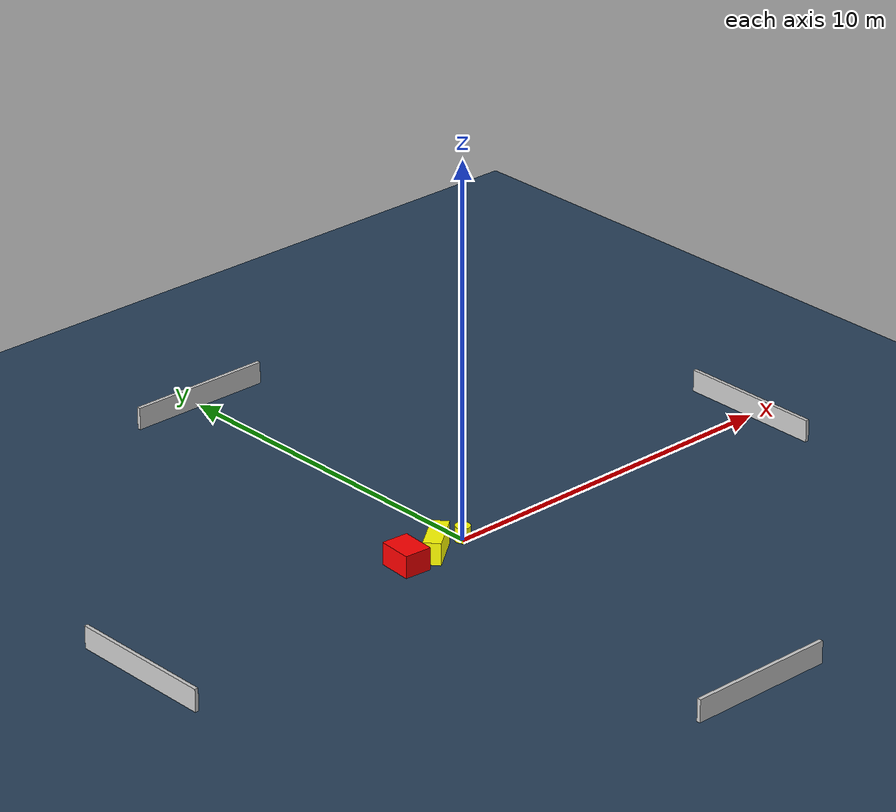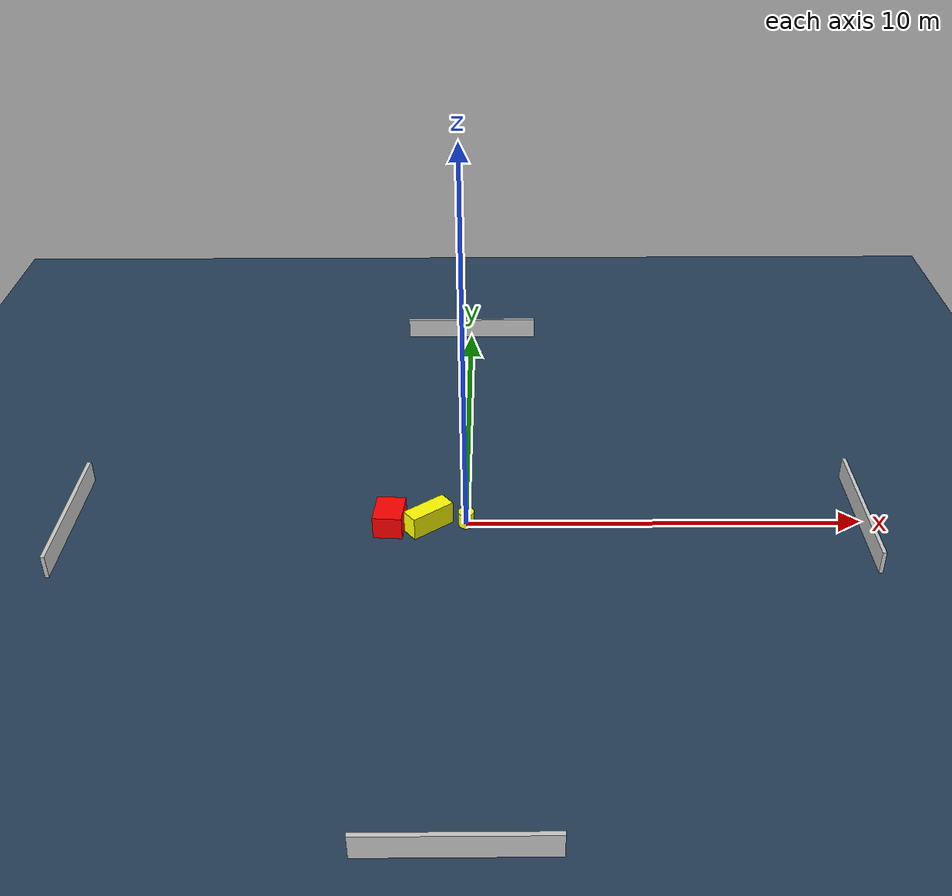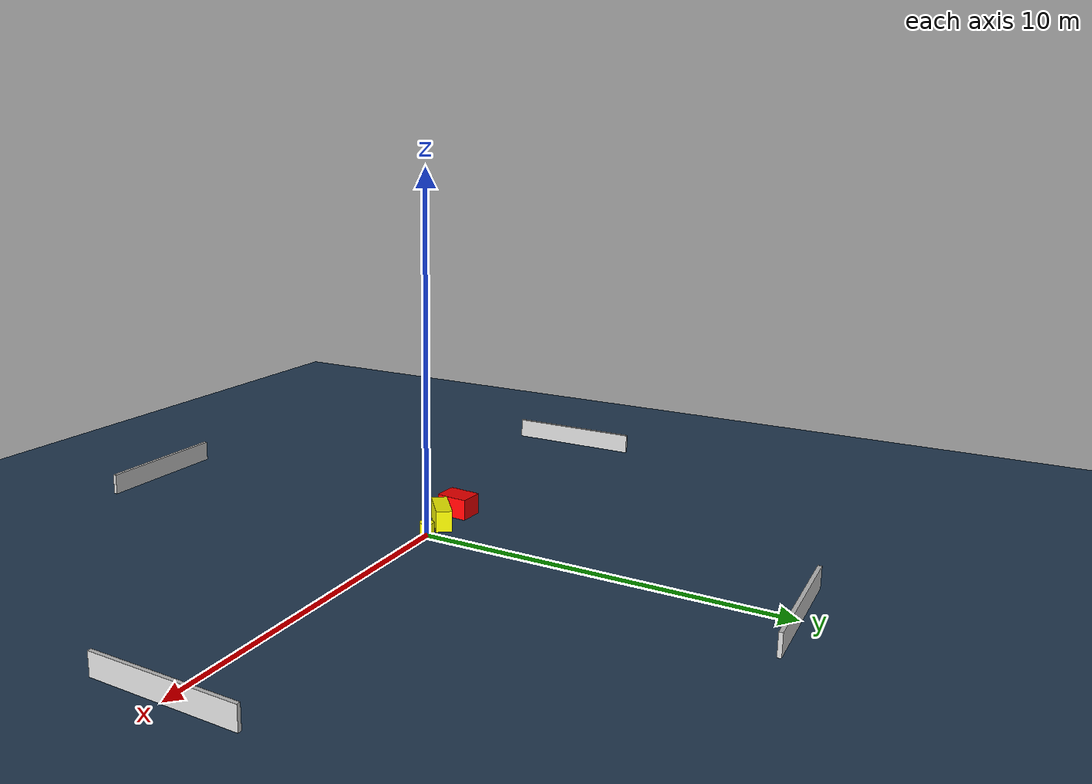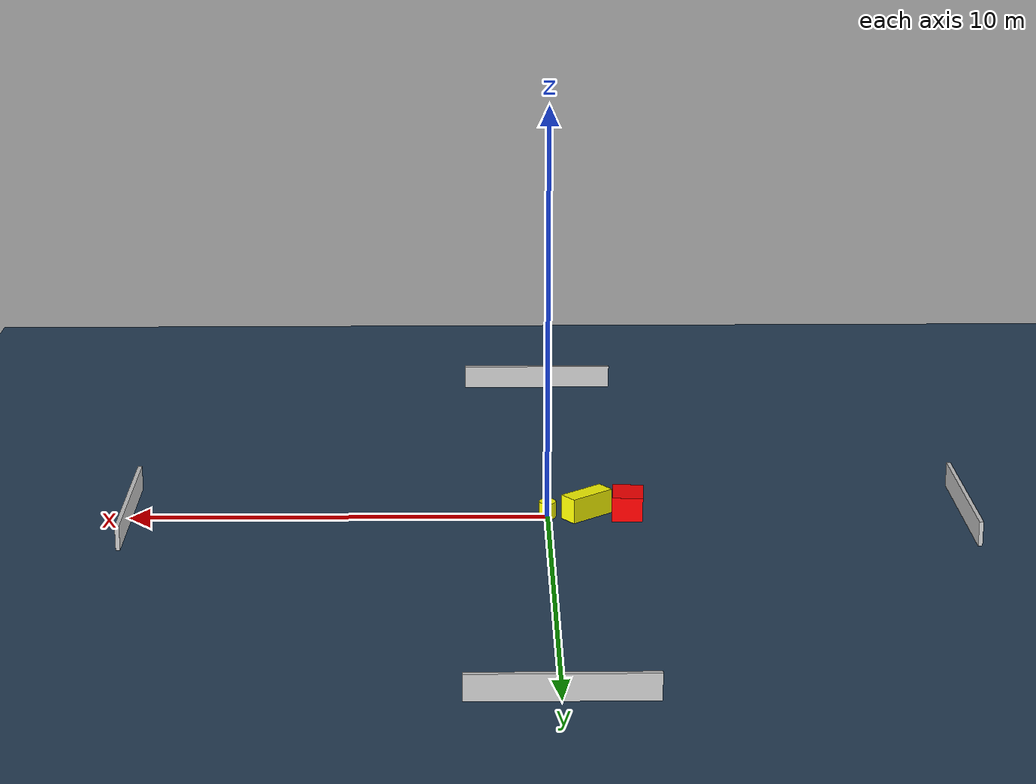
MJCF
<?xml version="1.0" ?>
<mujoco model="generated_environment">
  <option timestep="0.01" integrator="RK4" cone="elliptic"/>
  <default>
    <geom density="1"/>
  </default>
  <asset>
    <texture builtin="gradient" height="3072" name="skybox" rgb1="0.3 0.5 0.7" rgb2="0 0 0" type="skybox" width="512"/>
    <texture builtin="checker" height="300" name="groundplane" rgb1="0.2 0.3 0.4" rgb2="0.1 0.2 0.3" type="2d" width="300"/>
    <material name="groundplane" reflectance="0.2" texrepeat="5 5" texture="groundplane"/>
  </asset>
  <worldbody>
    <light dir="0 0 -1" directional="true" pos="0 0 1.5"/>
    <geom condim="3" friction="0.5 0.005 0.001" material="groundplane" name="floor" pos="0 0 0" size="0 0 0.05" type="plane"/>
    <body name="walls">
      <geom name="wall_1" condim="4" pos="-10.0 0.0 0.3" rgba="0.800000011920929 0.800000011920929 0.800000011920929 1.0" size="0.05 2.0 0.3" type="box"/>
      <geom name="wall_2" condim="4" pos="10.0 0.0 0.3" rgba="0.800000011920929 0.800000011920929 0.800000011920929 1.0" size="0.05 2.0 0.3" type="box"/>
      <geom name="wall_3" condim="4" pos="0.0 -10.0 0.3" rgba="0.800000011920929 0.800000011920929 0.800000011920929 1.0" size="2.0 0.05 0.3" type="box"/>
      <geom name="wall_4" condim="4" pos="0.0 10.0 0.3" rgba="0.800000011920929 0.800000011920929 0.800000011920929 1.0" size="2.0 0.05 0.3" type="box"/>
    </body>
    <body name="robot">
      <joint name="joint_x" type="slide" pos="0 0 0" axis="1 0 0"/>
      <joint name="joint_y" type="slide" pos="0 0 0" axis="0 1 0"/>
      <geom name="robot" type="cylinder" pos="0.0 0.0 0.2" size="0.2 0.2 0.0" mass="5.0" friction="1.0 0.005 0.0001" condim="4" rgba="1.0 1.0 0.0 1.0"/>
    </body>
    <body name="obstacle_1_movable">
      <geom name="obstacle_1_movable" condim="4" pos="-0.9441940794473594 -0.08227868851596909 0.3" euler="0 0 307.74492979513394" friction="0.0 0.005 0.001" rgba="1.0 1.0 0.0 1.0" size="0.2275714945465903 0.5931577462728909 0.3" type="box" mass="0.1"/>
      <joint type="free"/>
    </body>
    <body name="obstacle_2_static">
      <geom name="obstacle_2_static" condim="4" pos="-1.9256242572960018 -0.10083004313467986 0.3" euler="0 0 355.7945263955876" friction="0.0 0.005 0.001" rgba="1.0 0.0 0.0 1.0" size="0.3669479599737684 0.46381491064483527 0.3" type="box"/>
    </body>
  </worldbody>
  <actuator>
    <motor name="actuator_x" joint="joint_x" gear="1" ctrlrange="-1 1"/>
    <motor name="actuator_y" joint="joint_y" gear="1" ctrlrange="-1 1"/>
  </actuator>
</mujoco>
